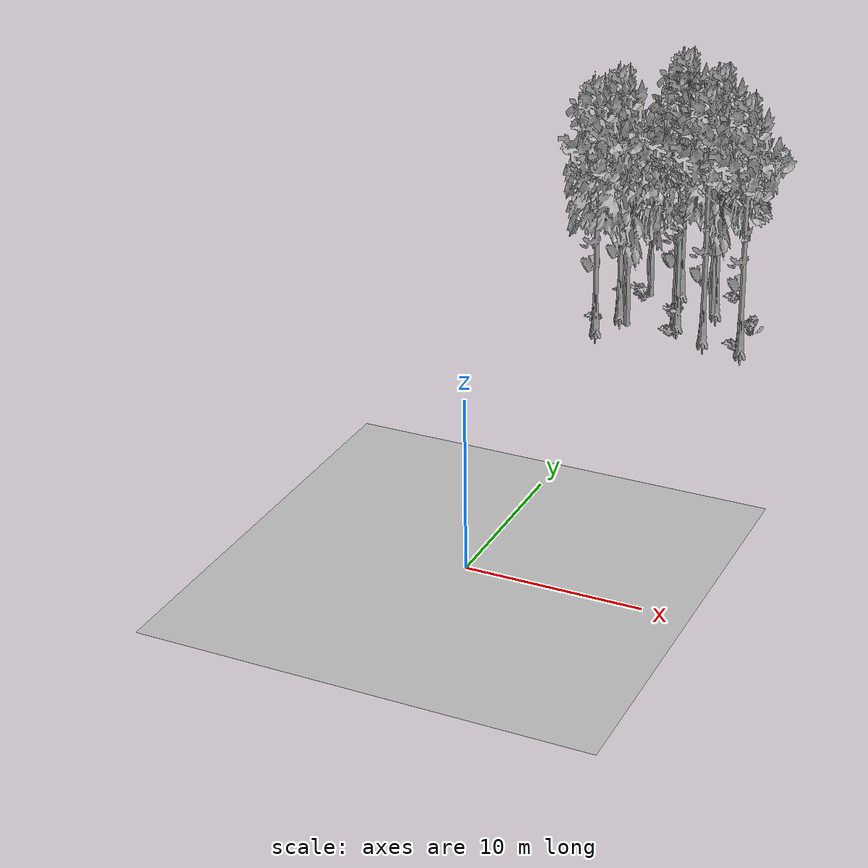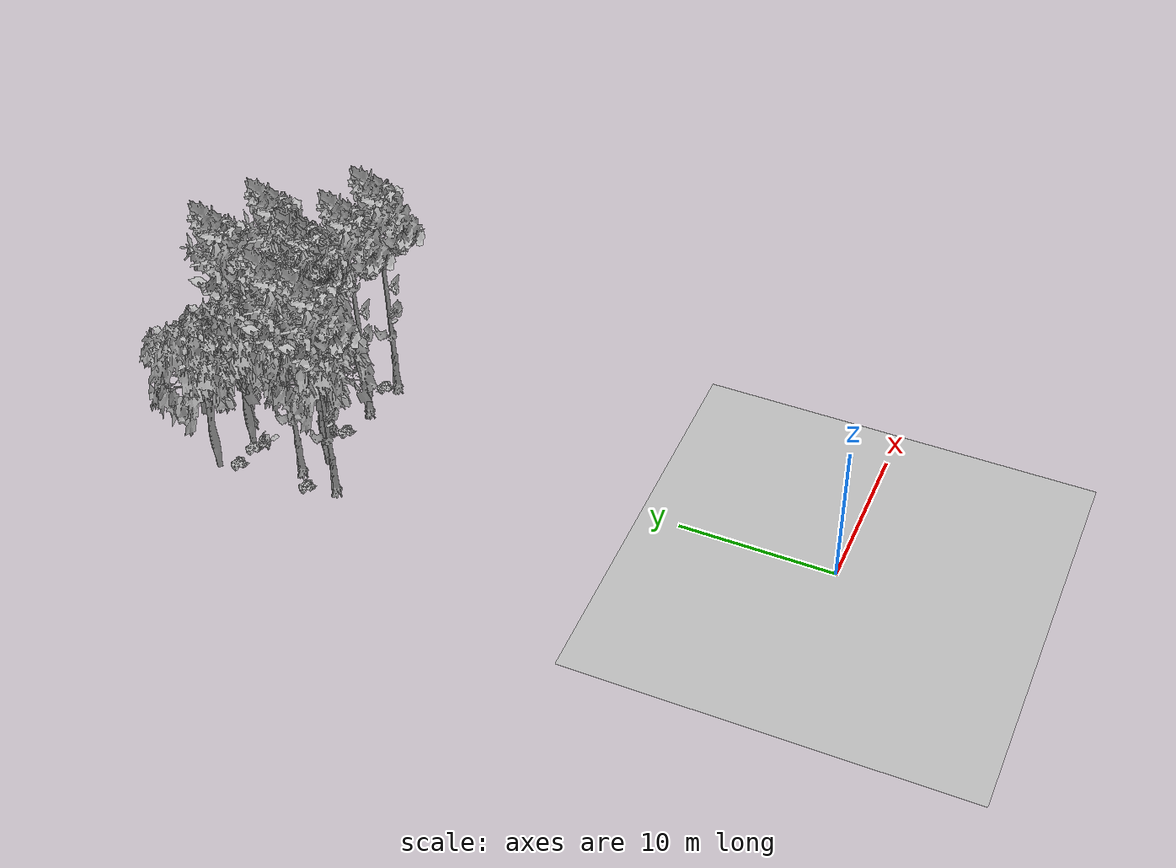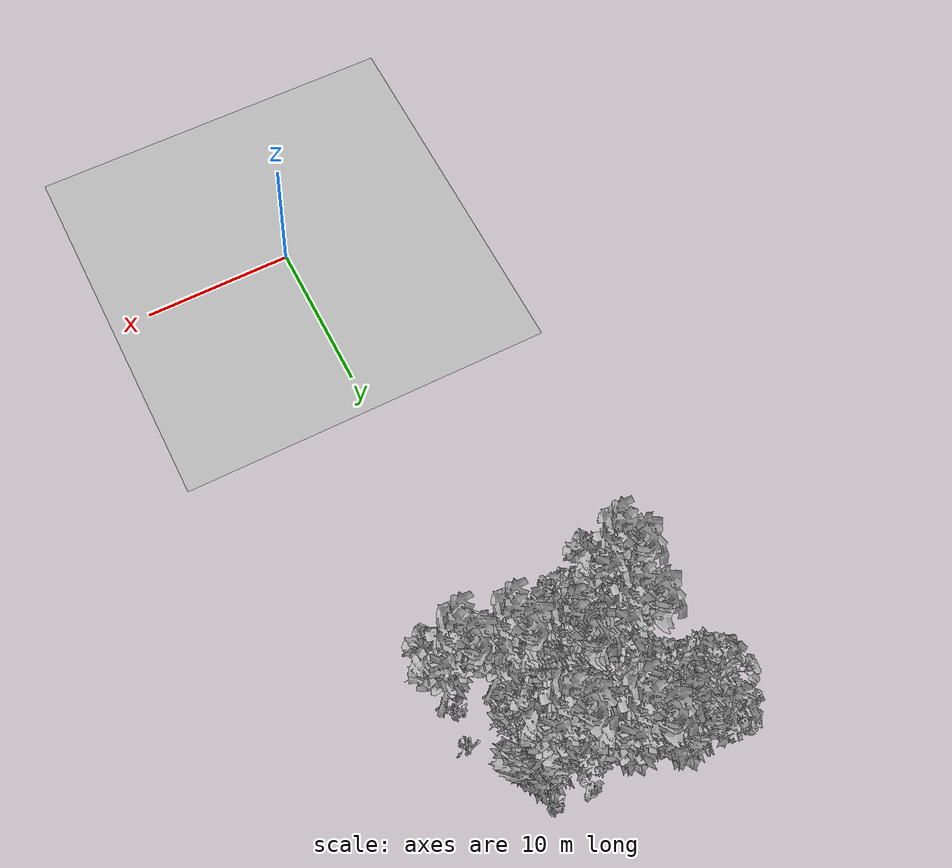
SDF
<sdf version="1.7">
 <world name="default">
  <model name="ground_plane">
   <static>1</static>
   <link name="link">
    <collision name="collision">
     <pose>-50 0 0 0 -0 0</pose>
     <geometry><plane><normal>0 0 1</normal><size>80 80</size></plane></geometry>
     <surface><contact><ode><min_depth>0.01</min_depth><max_vel>0</max_vel></ode></contact></surface>
    </collision>
    <visual name="grass">
     <cast_shadows>0</cast_shadows>
     <geometry>
      <mesh>
       <scale>0.46714285714285714 0.46714285714285714 0.1</scale>
       <uri>file://grass_plane/meshes/grass_plane.dae</uri>
      </mesh>
     </geometry>
    </visual>
   </link>
  </model>
  <model name="Tree 56">
   <static>1</static>
   <pose>1.2256093465262907 36.616486745296214 0 1.57079 -0 0</pose>
   <link name="link">
    <collision name="collision">
     <geometry><mesh><scale>3.5 5 3.5</scale><uri>model://tree_9/meshes/tree_9.obj</uri></mesh></geometry>
    </collision>
    <visual name="visual">
     <geometry><mesh><scale>3.5 5 3.5</scale><uri>model://tree_9/meshes/tree_9.obj</uri></mesh></geometry>
    </visual>
   </link>
  </model>
  <model name="Tree 118">
   <static>1</static>
   <pose>-3.813704626346208 37.38142242502232 0 1.57079 -0 0</pose>
   <link name="link">
    <collision name="collision">
     <geometry><mesh><scale>3.5 5 3.5</scale><uri>model://tree_2/meshes/tree_2.obj</uri></mesh></geometry>
    </collision>
    <visual name="visual">
     <geometry><mesh><scale>3.5 5 3.5</scale><uri>model://tree_2/meshes/tree_2.obj</uri></mesh></geometry>
    </visual>
   </link>
  </model>
  <model name="Tree 120">
   <static>1</static>
   <pose>1.0431970060190139 36.148772006145094 0 1.57079 -0 0</pose>
   <link name="link">
    <collision name="collision">
     <geometry><mesh><scale>3.5 5 3.5</scale><uri>model://tree_2/meshes/tree_2.obj</uri></mesh></geometry>
    </collision>
    <visual name="visual">
     <geometry><mesh><scale>3.5 5 3.5</scale><uri>model://tree_2/meshes/tree_2.obj</uri></mesh></geometry>
    </visual>
   </link>
  </model>
  <model name="Tree 254">
   <static>1</static>
   <pose>-0.6413096908596643 33.71273826431961 0 1.57079 -0 0</pose>
   <link name="link">
    <collision name="collision">
     <geometry><mesh><scale>3.5 5 3.5</scale><uri>model://tree_9/meshes/tree_9.obj</uri></mesh></geometry>
    </collision>
    <visual name="visual">
     <geometry><mesh><scale>3.5 5 3.5</scale><uri>model://tree_9/meshes/tree_9.obj</uri></mesh></geometry>
    </visual>
   </link>
  </model>
  <model name="Tree 277">
   <static>1</static>
   <pose>-3.5290831956831497 32.19015271184814 0 1.57079 -0 0</pose>
   <link name="link">
    <collision name="collision">
     <geometry><mesh><scale>3.5 5 3.5</scale><uri>model://tree_2/meshes/tree_2.obj</uri></mesh></geometry>
    </collision>
    <visual name="visual">
     <geometry><mesh><scale>3.5 5 3.5</scale><uri>model://tree_2/meshes/tree_2.obj</uri></mesh></geometry>
    </visual>
   </link>
  </model>
  <model name="Tree 343">
   <static>1</static>
   <pose>1.8798404877287567 32.146743384467726 0 1.57079 -0 0</pose>
   <link name="link">
    <collision name="collision">
     <geometry><mesh><scale>3.5 5 3.5</scale><uri>model://tree_9/meshes/tree_9.obj</uri></mesh></geometry>
    </collision>
    <visual name="visual">
     <geometry><mesh><scale>3.5 5 3.5</scale><uri>model://tree_9/meshes/tree_9.obj</uri></mesh></geometry>
    </visual>
   </link>
  </model>
  <model name="Tree 349">
   <static>1</static>
   <pose>-1.9267901638735836 38.573277296565834 0 1.57079 -0 0</pose>
   <link name="link">
    <collision name="collision">
     <geometry><mesh><scale>3.5 5 3.5</scale><uri>model://tree_9/meshes/tree_9.obj</uri></mesh></geometry>
    </collision>
    <visual name="visual">
     <geometry><mesh><scale>3.5 5 3.5</scale><uri>model://tree_9/meshes/tree_9.obj</uri></mesh></geometry>
    </visual>
   </link>
  </model>
  <model name="Tree 357">
   <static>1</static>
   <pose>-5.12461164905681 30.764173661283067 0 1.57079 -0 0</pose>
   <link name="link">
    <collision name="collision">
     <geometry><mesh><scale>3.5 5 3.5</scale><uri>model://tree_9/meshes/tree_9.obj</uri></mesh></geometry>
    </collision>
    <visual name="visual">
     <geometry><mesh><scale>3.5 5 3.5</scale><uri>model://tree_9/meshes/tree_9.obj</uri></mesh></geometry>
    </visual>
   </link>
  </model>
  <model name="Tree 485">
   <static>1</static>
   <pose>-0.46678927292125394 33.64061803749 0 1.57079 -0 0</pose>
   <link name="link">
    <collision name="collision">
     <geometry><mesh><scale>3.5 5 3.5</scale><uri>model://tree_9/meshes/tree_9.obj</uri></mesh></geometry>
    </collision>
    <visual name="visual">
     <geometry><mesh><scale>3.5 5 3.5</scale><uri>model://tree_9/meshes/tree_9.obj</uri></mesh></geometry>
    </visual>
   </link>
  </model>
  <model name="Tree 495">
   <static>1</static>
   <pose>-6.343029248074302 38.32328768418182 0 1.57079 -0 0</pose>
   <link name="link">
    <collision name="collision">
     <geometry><mesh><scale>3.5 5 3.5</scale><uri>model://tree_2/meshes/tree_2.obj</uri></mesh></geometry>
    </collision>
    <visual name="visual">
     <geometry><mesh><scale>3.5 5 3.5</scale><uri>model://tree_2/meshes/tree_2.obj</uri></mesh></geometry>
    </visual>
   </link>
  </model>
  <model name="Tree 496">
   <static>1</static>
   <pose>0.8922001254297811 36.6251681526205 0 1.57079 -0 0</pose>
   <link name="link">
    <collision name="collision">
     <geometry><mesh><scale>3.5 5 3.5</scale><uri>model://tree_2/meshes/tree_2.obj</uri></mesh></geometry>
    </collision>
    <visual name="visual">
     <geometry><mesh><scale>3.5 5 3.5</scale><uri>model://tree_2/meshes/tree_2.obj</uri></mesh></geometry>
    </visual>
   </link>
  </model>
  <model name="Tree 563">
   <static>1</static>
   <pose>-4.489781051218948 33.51529572294473 0 1.57079 -0 0</pose>
   <link name="link">
    <collision name="collision">
     <geometry><mesh><scale>3.5 5 3.5</scale><uri>model://tree_9/meshes/tree_9.obj</uri></mesh></geometry>
    </collision>
    <visual name="visual">
     <geometry><mesh><scale>3.5 5 3.5</scale><uri>model://tree_9/meshes/tree_9.obj</uri></mesh></geometry>
    </visual>
   </link>
  </model>
  <model name="Tree 593">
   <static>1</static>
   <pose>4.644546960218847 31.54949698538975 0 1.57079 -0 0</pose>
   <link name="link">
    <collision name="collision">
     <geometry><mesh><scale>3.5 5 3.5</scale><uri>model://tree_9/meshes/tree_9.obj</uri></mesh></geometry>
    </collision>
    <visual name="visual">
     <geometry><mesh><scale>3.5 5 3.5</scale><uri>model://tree_9/meshes/tree_9.obj</uri></mesh></geometry>
    </visual>
   </link>
  </model>
  <model name="Bush 44">
   <static>1</static>
   <pose>1.5009190002256716 39.20083492632929 0 1.57079 -0 0</pose>
   <link name="link">
    <collision name="collision">
     <geometry><mesh><scale>2 2 2</scale><uri>model://bush_2/meshes/bush_2.obj</uri></mesh></geometry>
     <surface><contact><collide_without_contact>false</collide_without_contact></contact></surface>
    </collision>
    <visual name="visual">
     <geometry><mesh><scale>2 2 2</scale><uri>model://bush_2/meshes/bush_2.obj</uri></mesh></geometry>
    </visual>
   </link>
  </model>
  <model name="Bush 80">
   <static>1</static>
   <pose>-0.681563514342514 32.42552325765074 0 1.57079 -0 0</pose>
   <link name="link">
    <collision name="collision">
     <geometry><mesh><scale>2 2 2</scale><uri>model://bush_2/meshes/bush_2.obj</uri></mesh></geometry>
     <surface><contact><collide_without_contact>false</collide_without_contact></contact></surface>
    </collision>
    <visual name="visual">
     <geometry><mesh><scale>2 2 2</scale><uri>model://bush_2/meshes/bush_2.obj</uri></mesh></geometry>
    </visual>
   </link>
  </model>
  <model name="Bush 137">
   <static>1</static>
   <pose>-5.788889335909666 37.21877653879383 0 1.57079 -0 0</pose>
   <link name="link">
    <collision name="collision">
     <geometry><mesh><scale>2 2 2</scale><uri>model://bush_2/meshes/bush_2.obj</uri></mesh></geometry>
     <surface><contact><collide_without_contact>false</collide_without_contact></contact></surface>
    </collision>
    <visual name="visual">
     <geometry><mesh><scale>2 2 2</scale><uri>model://bush_2/meshes/bush_2.obj</uri></mesh></geometry>
    </visual>
   </link>
  </model>
  <model name="Bush 164">
   <static>1</static>
   <pose>-3.902488928797993 36.234667174610166 0 1.57079 -0 0</pose>
   <link name="link">
    <collision name="collision">
     <geometry><mesh><scale>2 2 2</scale><uri>model://bush_0/meshes/bush_0.obj</uri></mesh></geometry>
     <surface><contact><collide_without_contact>false</collide_without_contact></contact></surface>
    </collision>
    <visual name="visual">
     <geometry><mesh><scale>2 2 2</scale><uri>model://bush_0/meshes/bush_0.obj</uri></mesh></geometry>
    </visual>
   </link>
  </model>
  <model name="Bush 262">
   <static>1</static>
   <pose>4.500800150320742 34.103363913904786 0 1.57079 -0 0</pose>
   <link name="link">
    <collision name="collision">
     <geometry><mesh><scale>2 2 2</scale><uri>model://bush_4/meshes/bush_4.obj</uri></mesh></geometry>
     <surface><contact><collide_without_contact>false</collide_without_contact></contact></surface>
    </collision>
    <visual name="visual">
     <geometry><mesh><scale>2 2 2</scale><uri>model://bush_4/meshes/bush_4.obj</uri></mesh></geometry>
    </visual>
   </link>
  </model>
  <model name="Bush 304">
   <static>1</static>
   <pose>-0.4701666260390951 39.39781608664572 0 1.57079 -0 0</pose>
   <link name="link">
    <collision name="collision">
     <geometry><mesh><scale>2 2 2</scale><uri>model://bush_0/meshes/bush_0.obj</uri></mesh></geometry>
     <surface><contact><collide_without_contact>false</collide_without_contact></contact></surface>
    </collision>
    <visual name="visual">
     <geometry><mesh><scale>2 2 2</scale><uri>model://bush_0/meshes/bush_0.obj</uri></mesh></geometry>
    </visual>
   </link>
  </model>
  <model name="Bush 348">
   <static>1</static>
   <pose>3.9105141417798635 32.06549195525638 0 1.57079 -0 0</pose>
   <link name="link">
    <collision name="collision">
     <geometry><mesh><scale>2 2 2</scale><uri>model://bush_2/meshes/bush_2.obj</uri></mesh></geometry>
     <surface><contact><collide_without_contact>false</collide_without_contact></contact></surface>
    </collision>
    <visual name="visual">
     <geometry><mesh><scale>2 2 2</scale><uri>model://bush_2/meshes/bush_2.obj</uri></mesh></geometry>
    </visual>
   </link>
  </model>
  <model name="Bush 471">
   <static>1</static>
   <pose>-5.8989950534700455 32.3555124562164 0 1.57079 -0 0</pose>
   <link name="link">
    <collision name="collision">
     <geometry><mesh><scale>2 2 2</scale><uri>model://bush_2/meshes/bush_2.obj</uri></mesh></geometry>
     <surface><contact><collide_without_contact>false</collide_without_contact></contact></surface>
    </collision>
    <visual name="visual">
     <geometry><mesh><scale>2 2 2</scale><uri>model://bush_2/meshes/bush_2.obj</uri></mesh></geometry>
    </visual>
   </link>
  </model>
  <model name="Bush 479">
   <static>1</static>
   <pose>-0.6981626707090527 33.84487859288137 0 1.57079 -0 0</pose>
   <link name="link">
    <collision name="collision">
     <geometry><mesh><scale>2 2 2</scale><uri>model://bush_0/meshes/bush_0.obj</uri></mesh></geometry>
     <surface><contact><collide_without_contact>false</collide_without_contact></contact></surface>
    </collision>
    <visual name="visual">
     <geometry><mesh><scale>2 2 2</scale><uri>model://bush_0/meshes/bush_0.obj</uri></mesh></geometry>
    </visual>
   </link>
  </model>
  <model name="Bush 483">
   <static>1</static>
   <pose>-4.235517589326371 37.08807344923537 0 1.57079 -0 0</pose>
   <link name="link">
    <collision name="collision">
     <geometry><mesh><scale>2 2 2</scale><uri>model://bush_2/meshes/bush_2.obj</uri></mesh></geometry>
     <surface><contact><collide_without_contact>false</collide_without_contact></contact></surface>
    </collision>
    <visual name="visual">
     <geometry><mesh><scale>2 2 2</scale><uri>model://bush_2/meshes/bush_2.obj</uri></mesh></geometry>
    </visual>
   </link>
  </model>
 </world>
</sdf>
